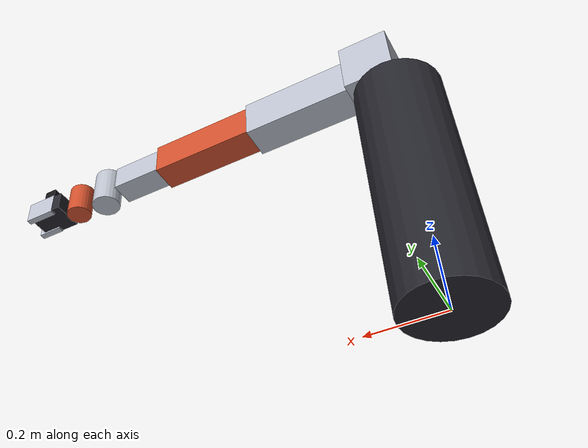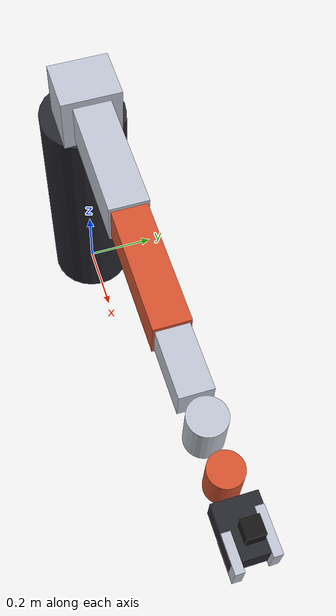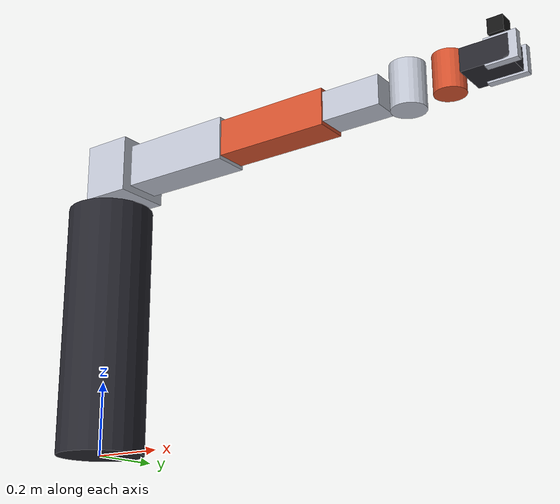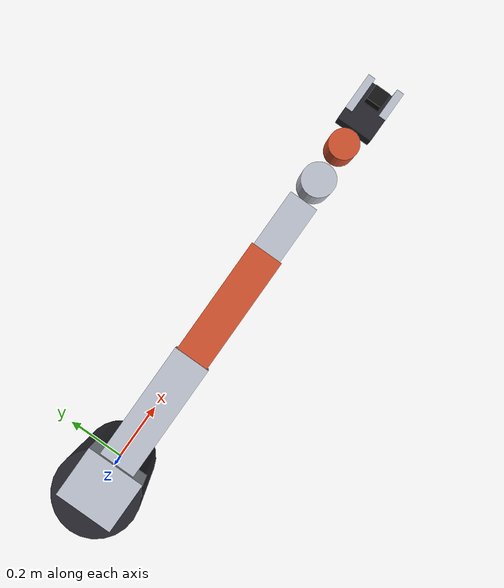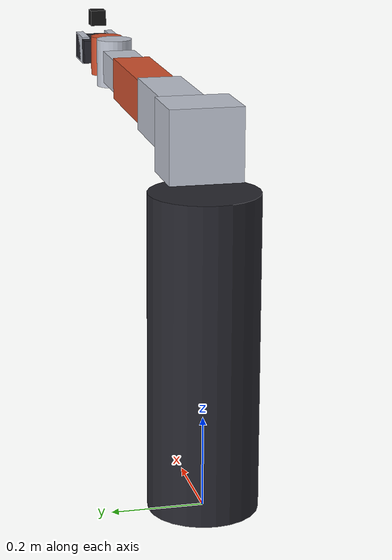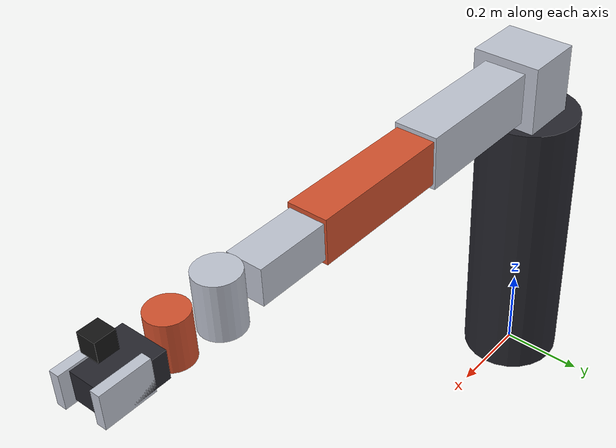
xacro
<?xml version="1.0"?>
<robot xmlns:xacro="http://www.ros.org/wiki/xacro" name="industrial_arm">
  <xacro:arg name="use_gazebo_control" default="false"/>
  <xacro:arg name="controllers_file" default=""/>

  <material name="mat_dark">
    <color rgba="0.15 0.15 0.18 1.0"/>
  </material>
  <material name="mat_light">
    <color rgba="0.75 0.77 0.82 1.0"/>
  </material>
  <material name="mat_accent">
    <color rgba="0.83 0.32 0.18 1.0"/>
  </material>
  <material name="mat_camera">
    <color rgba="0.08 0.08 0.08 1.0"/>
  </material>

  <xacro:macro name="box_inertial" params="mass x y z">
    <inertial>
      <origin xyz="0 0 0" rpy="0 0 0"/>
      <mass value="${mass}"/>
      <inertia
        ixx="${mass * (y * y + z * z) / 12.0}"
        ixy="0.0"
        ixz="0.0"
        iyy="${mass * (x * x + z * z) / 12.0}"
        iyz="0.0"
        izz="${mass * (x * x + y * y) / 12.0}"/>
    </inertial>
  </xacro:macro>

  <xacro:macro name="cylinder_inertial" params="mass radius length">
    <inertial>
      <origin xyz="0 0 0" rpy="0 0 0"/>
      <mass value="${mass}"/>
      <inertia
        ixx="${mass * (3.0 * radius * radius + length * length) / 12.0}"
        ixy="0.0"
        ixz="0.0"
        iyy="${mass * (3.0 * radius * radius + length * length) / 12.0}"
        iyz="0.0"
        izz="${0.5 * mass * radius * radius}"/>
    </inertial>
  </xacro:macro>

  <link name="base_link">
    <visual>
      <origin xyz="0 0 0.35" rpy="0 0 0"/>
      <geometry>
        <cylinder radius="0.12" length="0.70"/>
      </geometry>
      <material name="mat_dark"/>
    </visual>
    <collision>
      <origin xyz="0 0 0.35" rpy="0 0 0"/>
      <geometry>
        <cylinder radius="0.12" length="0.70"/>
      </geometry>
    </collision>
    <xacro:cylinder_inertial mass="18.0" radius="0.12" length="0.70"/>
  </link>

  <xacro:if value="$(arg use_gazebo_control)">
    <link name="world"/>

    <joint name="world_to_base_joint" type="fixed">
      <parent link="world"/>
      <child link="base_link"/>
      <origin xyz="0 0 0" rpy="0 0 0"/>
    </joint>
  </xacro:if>

  <link name="shoulder_link">
    <visual>
      <origin xyz="0.05 0 0" rpy="0 0 0"/>
      <geometry>
        <box size="0.14 0.16 0.16"/>
      </geometry>
      <material name="mat_light"/>
    </visual>
    <collision>
      <origin xyz="0.05 0 0" rpy="0 0 0"/>
      <geometry>
        <box size="0.14 0.16 0.16"/>
      </geometry>
    </collision>
    <xacro:box_inertial mass="4.0" x="0.14" y="0.16" z="0.16"/>
  </link>

  <joint name="shoulder_pan_joint" type="revolute">
    <parent link="base_link"/>
    <child link="shoulder_link"/>
    <origin xyz="0 0 0.80" rpy="0 0 0"/>
    <axis xyz="0 0 1"/>
    <limit lower="-3.14159" upper="3.14159" effort="90.0" velocity="1.5"/>
    <dynamics damping="0.1" friction="0.05"/>
  </joint>

  <link name="upper_arm_link">
    <visual>
      <origin xyz="0.18 0 0" rpy="0 0 0"/>
      <geometry>
        <box size="0.36 0.10 0.12"/>
      </geometry>
      <material name="mat_light"/>
    </visual>
    <collision>
      <origin xyz="0.18 0 0" rpy="0 0 0"/>
      <geometry>
        <box size="0.36 0.10 0.12"/>
      </geometry>
    </collision>
    <xacro:box_inertial mass="5.0" x="0.36" y="0.10" z="0.12"/>
  </link>

  <joint name="shoulder_lift_joint" type="revolute">
    <parent link="shoulder_link"/>
    <child link="upper_arm_link"/>
    <origin xyz="0.08 0 0" rpy="0 0 0"/>
    <axis xyz="0 1 0"/>
    <limit lower="-1.8" upper="1.6" effort="80.0" velocity="1.5"/>
    <dynamics damping="0.1" friction="0.05"/>
  </joint>

  <link name="forearm_link">
    <visual>
      <origin xyz="0.16 0 0" rpy="0 0 0"/>
      <geometry>
        <box size="0.32 0.09 0.10"/>
      </geometry>
      <material name="mat_accent"/>
    </visual>
    <collision>
      <origin xyz="0.16 0 0" rpy="0 0 0"/>
      <geometry>
        <box size="0.32 0.09 0.10"/>
      </geometry>
    </collision>
    <xacro:box_inertial mass="3.8" x="0.32" y="0.09" z="0.10"/>
  </link>

  <joint name="elbow_joint" type="revolute">
    <parent link="upper_arm_link"/>
    <child link="forearm_link"/>
    <origin xyz="0.36 0 0" rpy="0 0 0"/>
    <axis xyz="0 1 0"/>
    <limit lower="-2.1" upper="2.1" effort="70.0" velocity="1.5"/>
    <dynamics damping="0.1" friction="0.05"/>
  </joint>

  <link name="wrist_pitch_link">
    <visual>
      <origin xyz="0.08 0 0" rpy="0 0 0"/>
      <geometry>
        <box size="0.16 0.08 0.08"/>
      </geometry>
      <material name="mat_light"/>
    </visual>
    <collision>
      <origin xyz="0.08 0 0" rpy="0 0 0"/>
      <geometry>
        <box size="0.16 0.08 0.08"/>
      </geometry>
    </collision>
    <xacro:box_inertial mass="1.4" x="0.16" y="0.08" z="0.08"/>
  </link>

  <joint name="wrist_pitch_joint" type="revolute">
    <parent link="forearm_link"/>
    <child link="wrist_pitch_link"/>
    <origin xyz="0.32 0 0" rpy="0 0 0"/>
    <axis xyz="0 1 0"/>
    <limit lower="-2.4" upper="2.4" effort="40.0" velocity="2.0"/>
    <dynamics damping="0.08" friction="0.02"/>
  </joint>

  <link name="wrist_yaw_link">
    <visual>
      <origin xyz="0.06 0 0" rpy="0 0 0"/>
      <geometry>
        <cylinder radius="0.045" length="0.12"/>
      </geometry>
      <material name="mat_light"/>
    </visual>
    <collision>
      <origin xyz="0.06 0 0" rpy="0 0 0"/>
      <geometry>
        <cylinder radius="0.045" length="0.12"/>
      </geometry>
    </collision>
    <xacro:cylinder_inertial mass="1.0" radius="0.045" length="0.12"/>
  </link>

  <joint name="wrist_yaw_joint" type="revolute">
    <parent link="wrist_pitch_link"/>
    <child link="wrist_yaw_link"/>
    <origin xyz="0.16 0 0" rpy="0 0 0"/>
    <axis xyz="0 0 1"/>
    <limit lower="-3.14159" upper="3.14159" effort="35.0" velocity="2.0"/>
    <dynamics damping="0.08" friction="0.02"/>
  </joint>

  <link name="wrist_roll_link">
    <visual>
      <origin xyz="0.05 0 0" rpy="0 0 0"/>
      <geometry>
        <cylinder radius="0.04" length="0.10"/>
      </geometry>
      <material name="mat_accent"/>
    </visual>
    <collision>
      <origin xyz="0.05 0 0" rpy="0 0 0"/>
      <geometry>
        <cylinder radius="0.04" length="0.10"/>
      </geometry>
    </collision>
    <xacro:cylinder_inertial mass="0.9" radius="0.04" length="0.10"/>
  </link>

  <joint name="wrist_roll_joint" type="revolute">
    <parent link="wrist_yaw_link"/>
    <child link="wrist_roll_link"/>
    <origin xyz="0.12 0 0" rpy="0 0 0"/>
    <axis xyz="1 0 0"/>
    <limit lower="-3.14159" upper="3.14159" effort="30.0" velocity="2.0"/>
    <dynamics damping="0.08" friction="0.02"/>
  </joint>

  <link name="gripper_base_link">
    <visual>
      <origin xyz="0.06 0 0" rpy="0 0 0"/>
      <geometry>
        <box size="0.12 0.10 0.06"/>
      </geometry>
      <material name="mat_dark"/>
    </visual>
    <collision>
      <origin xyz="0.06 0 0" rpy="0 0 0"/>
      <geometry>
        <box size="0.12 0.10 0.06"/>
      </geometry>
    </collision>
    <visual>
      <origin xyz="0.10 -0.04 0" rpy="0 0 0"/>
      <geometry>
        <box size="0.08 0.02 0.07"/>
      </geometry>
      <material name="mat_light"/>
    </visual>
    <collision>
      <origin xyz="0.10 -0.04 0" rpy="0 0 0"/>
      <geometry>
        <box size="0.08 0.02 0.07"/>
      </geometry>
    </collision>
    <xacro:box_inertial mass="0.8" x="0.12" y="0.10" z="0.06"/>
  </link>

  <joint name="tool_mount_joint" type="fixed">
    <parent link="wrist_roll_link"/>
    <child link="gripper_base_link"/>
    <origin xyz="0.10 0 0" rpy="0 0 0"/>
  </joint>

  <link name="gripper_slider_link">
    <visual>
      <origin xyz="0.05 0 0" rpy="0 0 0"/>
      <geometry>
        <box size="0.10 0.02 0.07"/>
      </geometry>
      <material name="mat_light"/>
    </visual>
    <collision>
      <origin xyz="0.05 0 0" rpy="0 0 0"/>
      <geometry>
        <box size="0.10 0.02 0.07"/>
      </geometry>
    </collision>
    <xacro:box_inertial mass="0.2" x="0.10" y="0.02" z="0.07"/>
  </link>

  <joint name="gripper_joint" type="prismatic">
    <parent link="gripper_base_link"/>
    <child link="gripper_slider_link"/>
    <origin xyz="0.03 0.04 0" rpy="0 0 0"/>
    <axis xyz="0 -1 0"/>
    <limit lower="0.0" upper="0.04" effort="40.0" velocity="0.2"/>
    <dynamics damping="0.05" friction="0.02"/>
  </joint>

  <link name="tool0"/>

  <joint name="tool0_joint" type="fixed">
    <parent link="gripper_base_link"/>
    <child link="tool0"/>
    <origin xyz="0.14 0 0" rpy="0 0 0"/>
  </joint>

  <link name="camera_link">
    <visual>
      <origin xyz="0 0 0" rpy="0 0 0"/>
      <geometry>
        <box size="0.04 0.04 0.04"/>
      </geometry>
      <material name="mat_camera"/>
    </visual>
    <collision>
      <origin xyz="0 0 0" rpy="0 0 0"/>
      <geometry>
        <box size="0.04 0.04 0.04"/>
      </geometry>
    </collision>
    <xacro:box_inertial mass="0.1" x="0.04" y="0.04" z="0.04"/>
  </link>

  <joint name="camera_mount_joint" type="fixed">
    <parent link="gripper_base_link"/>
    <child link="camera_link"/>
    <origin xyz="0.08 0.0 0.08" rpy="0 0 0"/>
  </joint>

  <link name="camera_optical_frame"/>

  <joint name="camera_optical_joint" type="fixed">
    <parent link="camera_link"/>
    <child link="camera_optical_frame"/>
    <origin xyz="0 0 0" rpy="-1.57079632679 0 -1.57079632679"/>
  </joint>

  <gazebo reference="base_link">
    <material>Gazebo/DarkGrey</material>
  </gazebo>
  <gazebo reference="upper_arm_link">
    <material>Gazebo/Grey</material>
  </gazebo>
  <gazebo reference="forearm_link">
    <material>Gazebo/Orange</material>
  </gazebo>
  <gazebo reference="gripper_base_link">
    <material>Gazebo/Black</material>
  </gazebo>
  <gazebo reference="camera_link">
    <sensor type="camera" name="wrist_camera">
      <always_on>true</always_on>
      <update_rate>15</update_rate>
      <visualize>false</visualize>
      <pose>0 0 0 0 0 0</pose>
      <camera>
        <horizontal_fov>1.047</horizontal_fov>
        <image>
          <width>640</width>
          <height>480</height>
          <format>R8G8B8</format>
        </image>
        <clip>
          <near>0.02</near>
          <far>2.0</far>
        </clip>
      </camera>
      <plugin name="wrist_camera_plugin" filename="libgazebo_ros_camera.so">
        <frame_name>camera_optical_frame</frame_name>
        <camera_name>wrist_camera</camera_name>
        <hack_baseline>0.0</hack_baseline>
      </plugin>
    </sensor>
  </gazebo>

  <xacro:if value="$(arg use_gazebo_control)">
    <ros2_control name="GazeboSystem" type="system">
      <hardware>
        <plugin>gazebo_ros2_control/GazeboSystem</plugin>
      </hardware>
      <joint name="shoulder_pan_joint">
        <command_interface name="position">
          <param name="min">-3.14159</param>
          <param name="max">3.14159</param>
        </command_interface>
        <state_interface name="position">
          <param name="initial_value">2.40</param>
        </state_interface>
        <state_interface name="velocity"/>
      </joint>
      <joint name="shoulder_lift_joint">
        <command_interface name="position">
          <param name="min">-1.8</param>
          <param name="max">1.6</param>
        </command_interface>
        <state_interface name="position">
          <param name="initial_value">0.40</param>
        </state_interface>
        <state_interface name="velocity"/>
      </joint>
      <joint name="elbow_joint">
        <command_interface name="position">
          <param name="min">-2.1</param>
          <param name="max">2.1</param>
        </command_interface>
        <state_interface name="position">
          <param name="initial_value">-1.10</param>
        </state_interface>
        <state_interface name="velocity"/>
      </joint>
      <joint name="wrist_pitch_joint">
        <command_interface name="position">
          <param name="min">-2.4</param>
          <param name="max">2.4</param>
        </command_interface>
        <state_interface name="position">
          <param name="initial_value">0.75</param>
        </state_interface>
        <state_interface name="velocity"/>
      </joint>
      <joint name="wrist_yaw_joint">
        <command_interface name="position">
          <param name="min">-3.14159</param>
          <param name="max">3.14159</param>
        </command_interface>
        <state_interface name="position">
          <param name="initial_value">1.57</param>
        </state_interface>
        <state_interface name="velocity"/>
      </joint>
      <joint name="wrist_roll_joint">
        <command_interface name="position">
          <param name="min">-3.14159</param>
          <param name="max">3.14159</param>
        </command_interface>
        <state_interface name="position">
          <param name="initial_value">0.0</param>
        </state_interface>
        <state_interface name="velocity"/>
      </joint>
      <joint name="gripper_joint">
        <command_interface name="position">
          <param name="min">0.0</param>
          <param name="max">0.04</param>
        </command_interface>
        <state_interface name="position">
          <param name="initial_value">0.04</param>
        </state_interface>
        <state_interface name="velocity"/>
      </joint>
    </ros2_control>

    <gazebo>
      <plugin name="gazebo_ros2_control" filename="libgazebo_ros2_control.so">
        <robot_param>robot_description</robot_param>
        <robot_param_node>robot_state_publisher</robot_param_node>
        <parameters>$(arg controllers_file)</parameters>
      </plugin>
    </gazebo>
  </xacro:if>
</robot>
